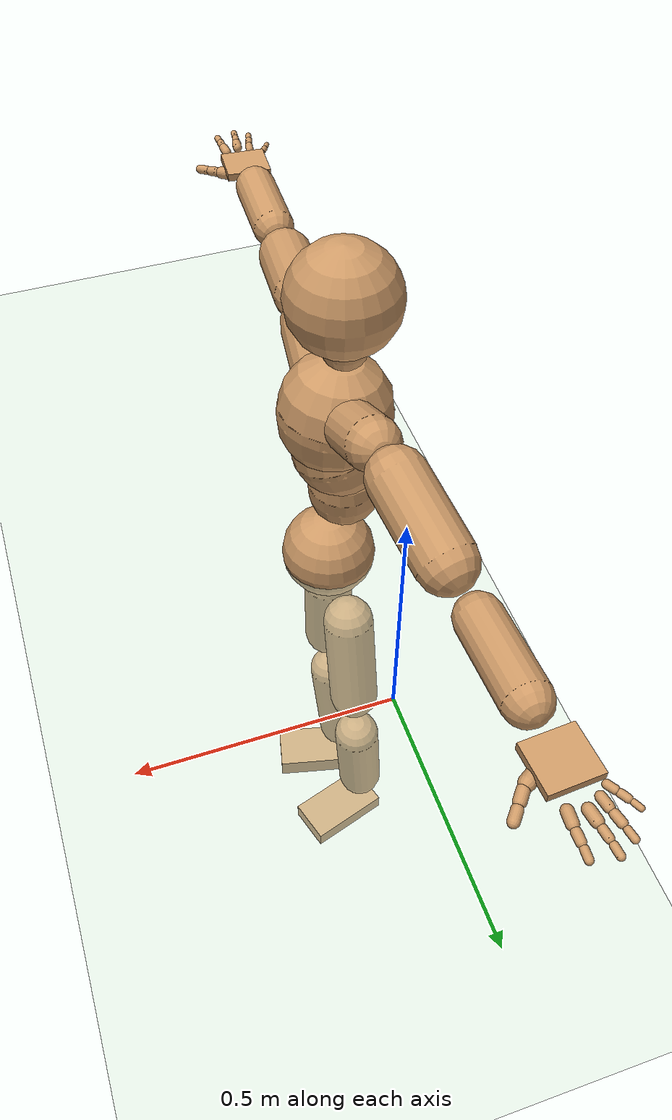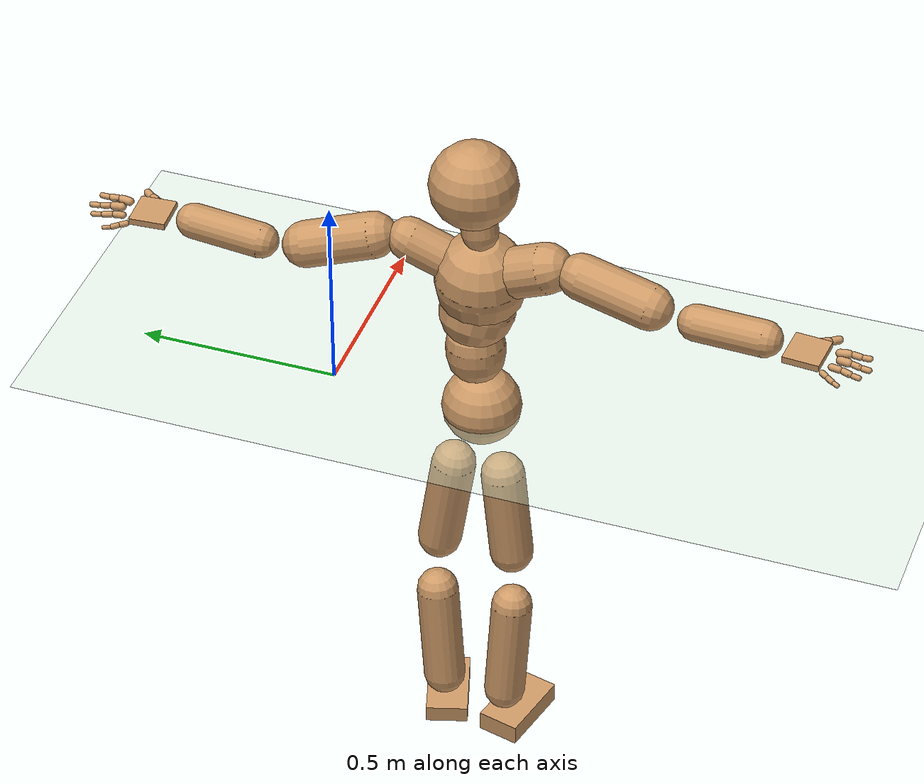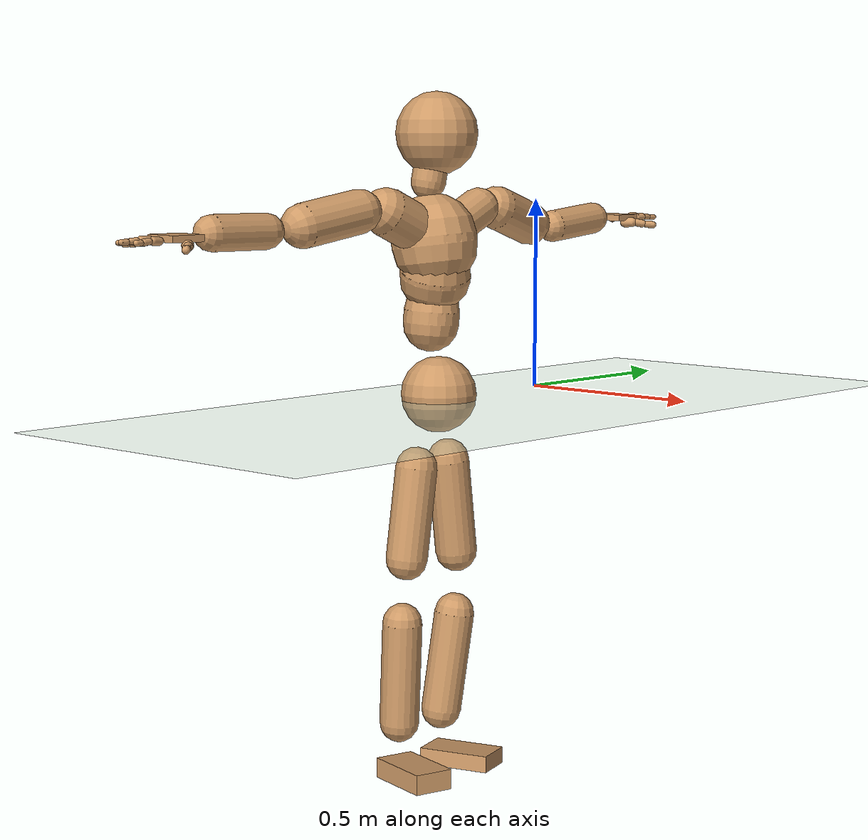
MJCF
<mujoco model="humanoid">
  <compiler coordinate="local" angle="radian"/>
  <default>
    <joint damping="0.0" armature="0.01" stiffness="0.0" limited="true"/>
    <geom conaffinity="1" condim="3" contype="7" margin="0.001" rgba="0.8 0.6 .4 1"/>
  </default>
  <asset>
    <texture type="skybox" builtin="gradient" rgb1=".4 .5 .6" rgb2="0 0 0" width="100" height="100"/>
    <texture builtin="flat" height="1278" mark="cross" markrgb="1 1 1" name="texgeom" random="0.01" rgb1="0.8 0.6 0.4" rgb2="0.8 0.6 0.4" type="cube" width="127"/>
    <texture builtin="checker" height="100" name="texplane" rgb1="0 0 0" rgb2="0.8 0.8 0.8" type="2d" width="100"/>
    <material name="MatPlane" reflectance="0.5" shininess="1" specular="1" texrepeat="60 60" texture="texplane"/>
    <material name="geom" texture="texgeom" texuniform="true"/>
  </asset>
  <worldbody>
    <light cutoff="100" diffuse="1 1 1" dir="-0 0 -1.3" directional="true" exponent="1" pos="0 0 1.3" specular=".1 .1 .1"/>
    <geom conaffinity="1" condim="3" name="floor" pos="0 0 0" rgba="0.8 0.9 0.8 1" size="100 100 .2" type="plane" material="MatPlane"/>
    <body name="Pelvis" pos="0.0011 -0.3809 0.012">
      <freejoint name="Pelvis"/>
      <geom type="sphere" contype="1" conaffinity="1" density="500" size="0.0979" pos="0.0000 0.0000 0.0000" name="Pelvis"/>
      <body name="L_Hip" pos="-0.0233 0.0507 -0.0968">
        <joint name="L_Hip_x" type="hinge" pos="0 0 0" axis="1 0 0" stiffness="800" damping="80" armature="0.02" range="-180.0000 180.0000"/>
        <joint name="L_Hip_y" type="hinge" pos="0 0 0" axis="0 1 0" stiffness="800" damping="80" armature="0.02" range="-180.0000 180.0000"/>
        <joint name="L_Hip_z" type="hinge" pos="0 0 0" axis="0 0 1" stiffness="800" damping="80" armature="0.02" range="-180.0000 180.0000"/>
        <geom type="capsule" contype="1" conaffinity="1" density="500" fromto="-0.0016 0.0121 -0.0824 -0.0063 0.0483 -0.3296" size="0.0547" name="L_Hip"/>
        <body name="L_Knee" pos="-0.0079 0.0604 -0.412">
          <joint name="L_Knee_x" type="hinge" pos="0 0 0" axis="1 0 0" stiffness="800" damping="80" armature="0.02" range="-180.0000 180.0000"/>
          <joint name="L_Knee_y" type="hinge" pos="0 0 0" axis="0 1 0" stiffness="800" damping="80" armature="0.02" range="-180.0000 180.0000"/>
          <joint name="L_Knee_z" type="hinge" pos="0 0 0" axis="0 0 1" stiffness="800" damping="80" armature="0.02" range="-180.0000 180.0000"/>
          <geom type="capsule" contype="1" conaffinity="1" density="500" fromto="-0.0078 -0.0086 -0.0873 -0.0312 -0.0344 -0.3492" size="0.0524" name="L_Knee"/>
          <body name="L_Ankle" pos="-0.039 -0.043 -0.4365">
            <joint name="L_Ankle_x" type="hinge" pos="0 0 0" axis="1 0 0" stiffness="800" damping="80" armature="0.02" range="-180.0000 180.0000"/>
            <joint name="L_Ankle_y" type="hinge" pos="0 0 0" axis="0 1 0" stiffness="800" damping="80" armature="0.02" range="-180.0000 180.0000"/>
            <joint name="L_Ankle_z" type="hinge" pos="0 0 0" axis="0 0 1" stiffness="800" damping="80" armature="0.02" range="-180.0000 180.0000"/>
            <geom type="box" contype="1" conaffinity="1" density="500" pos="0.0700 0.0214 -0.0322" size="0.0959 0.0528 0.0217" quat="0.9890 0.0000 0.0000 0.1482" name="L_Ankle"/>
            <body name="L_Toe" pos="0.1399 0.0429 -0.0644">
              <joint name="L_Toe_x" type="hinge" pos="0 0 0" axis="1 0 0" stiffness="500" damping="50" armature="0.02" range="-180.0000 180.0000"/>
              <joint name="L_Toe_y" type="hinge" pos="0 0 0" axis="0 1 0" stiffness="500" damping="50" armature="0.02" range="-180.0000 180.0000"/>
              <joint name="L_Toe_z" type="hinge" pos="0 0 0" axis="0 0 1" stiffness="500" damping="50" armature="0.02" range="-180.0000 180.0000"/>
              <geom type="box" contype="1" conaffinity="1" density="500" pos="0.0000 0.0000 0.0321" size="0.001 0.0025 0.0011" quat="0.9883 0.0000 0.0000 0.1526" name="L_Toe"/>
            </body>
          </body>
        </body>
      </body>
      <body name="R_Hip" pos="-0.0175 -0.0527 -0.1079">
        <joint name="R_Hip_x" type="hinge" pos="0 0 0" axis="1 0 0" stiffness="800" damping="80" armature="0.02" range="-180.0000 180.0000"/>
        <joint name="R_Hip_y" type="hinge" pos="0 0 0" axis="0 1 0" stiffness="800" damping="80" armature="0.02" range="-180.0000 180.0000"/>
        <joint name="R_Hip_z" type="hinge" pos="0 0 0" axis="0 0 1" stiffness="800" damping="80" armature="0.02" range="-180.0000 180.0000"/>
        <geom type="capsule" contype="1" conaffinity="1" density="500" fromto="-0.0030 -0.0091 -0.0787 -0.0120 -0.0364 -0.3150" size="0.0542" name="R_Hip"/>
        <body name="R_Knee" pos="-0.015 -0.0455 -0.3937">
          <joint name="R_Knee_x" type="hinge" pos="0 0 0" axis="1 0 0" stiffness="800" damping="80" armature="0.02" range="-180.0000 180.0000"/>
          <joint name="R_Knee_y" type="hinge" pos="0 0 0" axis="0 1 0" stiffness="800" damping="80" armature="0.02" range="-180.0000 180.0000"/>
          <joint name="R_Knee_z" type="hinge" pos="0 0 0" axis="0 0 1" stiffness="800" damping="80" armature="0.02" range="-180.0000 180.0000"/>
          <geom type="capsule" contype="1" conaffinity="1" density="500" fromto="-0.0074 0.0035 -0.0903 -0.0295 0.0139 -0.3610" size="0.0516" name="R_Knee"/>
          <body name="R_Ankle" pos="-0.0369 0.0174 -0.4513">
            <joint name="R_Ankle_x" type="hinge" pos="0 0 0" axis="1 0 0" stiffness="800" damping="80" armature="0.02" range="-180.0000 180.0000"/>
            <joint name="R_Ankle_y" type="hinge" pos="0 0 0" axis="0 1 0" stiffness="800" damping="80" armature="0.02" range="-180.0000 180.0000"/>
            <joint name="R_Ankle_z" type="hinge" pos="0 0 0" axis="0 0 1" stiffness="800" damping="80" armature="0.02" range="-180.0000 180.0000"/>
            <geom type="box" contype="1" conaffinity="1" density="500" pos="0.0731 -0.0173 -0.0315" size="0.0959 0.0528 0.0262" quat="0.9932 0.0000 0.0000 -0.1161" name="R_Ankle"/>
            <body name="R_Toe" pos="0.1463 -0.0347 -0.063">
              <joint name="R_Toe_x" type="hinge" pos="0 0 0" axis="1 0 0" stiffness="500" damping="50" armature="0.02" range="-180.0000 180.0000"/>
              <joint name="R_Toe_y" type="hinge" pos="0 0 0" axis="0 1 0" stiffness="500" damping="50" armature="0.02" range="-180.0000 180.0000"/>
              <joint name="R_Toe_z" type="hinge" pos="0 0 0" axis="0 0 1" stiffness="500" damping="50" armature="0.02" range="-180.0000 180.0000"/>
              <geom type="box" contype="1" conaffinity="1" density="500" pos="0.0000 0.0000 0.0269" size="0.001 0.0025 0.0011" quat="0.9941 0.0000 0.0000 -0.1082" name="R_Toe"/>
            </body>
          </body>
        </body>
      </body>
      <body name="Torso" pos="-0.034 -0.0001 0.1146">
        <joint name="Torso_x" type="hinge" pos="0 0 0" axis="1 0 0" stiffness="1000" damping="100" armature="0.02" range="-180.0000 180.0000"/>
        <joint name="Torso_y" type="hinge" pos="0 0 0" axis="0 1 0" stiffness="1000" damping="100" armature="0.02" range="-180.0000 180.0000"/>
        <joint name="Torso_z" type="hinge" pos="0 0 0" axis="0 0 1" stiffness="1000" damping="100" armature="0.02" range="-180.0000 180.0000"/>
        <geom type="capsule" contype="1" conaffinity="1" density="500" fromto="0.0041 0.0060 0.0972 0.0027 0.0040 0.0648" size="0.0719" name="Torso"/>
        <body name="Spine" pos="0.0068 0.0101 0.162">
          <joint name="Spine_x" type="hinge" pos="0 0 0" axis="1 0 0" stiffness="1000" damping="100" armature="0.02" range="-180.0000 180.0000"/>
          <joint name="Spine_y" type="hinge" pos="0 0 0" axis="0 1 0" stiffness="1000" damping="100" armature="0.02" range="-180.0000 180.0000"/>
          <joint name="Spine_z" type="hinge" pos="0 0 0" axis="0 0 1" stiffness="1000" damping="100" armature="0.02" range="-180.0000 180.0000"/>
          <geom type="capsule" contype="1" conaffinity="1" density="500" fromto="0.0121 -0.0063 0.0363 0.0081 -0.0042 0.0242" size="0.0918" name="Spine"/>
          <body name="Chest" pos="0.0202 -0.0105 0.0605">
            <joint name="Chest_x" type="hinge" pos="0 0 0" axis="1 0 0" stiffness="1000" damping="100" armature="0.02" range="-180.0000 180.0000"/>
            <joint name="Chest_y" type="hinge" pos="0 0 0" axis="0 1 0" stiffness="1000" damping="100" armature="0.02" range="-180.0000 180.0000"/>
            <joint name="Chest_z" type="hinge" pos="0 0 0" axis="0 0 1" stiffness="1000" damping="100" armature="0.02" range="-180.0000 180.0000"/>
            <geom type="capsule" contype="1" conaffinity="1" density="500" fromto="-0.0078 -0.0026 0.0666 -0.0052 -0.0017 0.0444" size="0.1103" name="Chest"/>
            <body name="Neck" pos="-0.0267 -0.01 0.1732">
              <joint name="Neck_x" type="hinge" pos="0 0 0" axis="1 0 0" stiffness="500" damping="50" armature="0.02" range="-180.0000 180.0000"/>
              <joint name="Neck_y" type="hinge" pos="0 0 0" axis="0 1 0" stiffness="500" damping="50" armature="0.02" range="-180.0000 180.0000"/>
              <joint name="Neck_z" type="hinge" pos="0 0 0" axis="0 0 1" stiffness="500" damping="50" armature="0.02" range="-180.0000 180.0000"/>
              <geom type="capsule" contype="1" conaffinity="1" density="500" fromto="0.0026 0.0049 0.0307 0.0104 0.0197 0.1229" size="0.0446" name="Neck"/>
              <body name="Head" pos="0.0131 0.0246 0.1536">
                <joint name="Head_x" type="hinge" pos="0 0 0" axis="1 0 0" stiffness="500" damping="50" armature="0.02" range="-180.0000 180.0000"/>
                <joint name="Head_y" type="hinge" pos="0 0 0" axis="0 1 0" stiffness="500" damping="50" armature="0.02" range="-180.0000 180.0000"/>
                <joint name="Head_z" type="hinge" pos="0 0 0" axis="0 0 1" stiffness="500" damping="50" armature="0.02" range="-180.0000 180.0000"/>
                <geom type="sphere" contype="1" conaffinity="1" density="500" size="0.1059" pos="0.0000 0.0000 0.0000" name="Head"/>
              </body>
            </body>
            <body name="L_Thorax" pos="-0.0043 0.0471 0.0795">
              <joint name="L_Thorax_x" type="hinge" pos="0 0 0" axis="1 0 0" stiffness="500" damping="50" armature="0.02" range="-180.0000 180.0000"/>
              <joint name="L_Thorax_y" type="hinge" pos="0 0 0" axis="0 1 0" stiffness="500" damping="50" armature="0.02" range="-180.0000 180.0000"/>
              <joint name="L_Thorax_z" type="hinge" pos="0 0 0" axis="0 0 1" stiffness="500" damping="50" armature="0.02" range="-180.0000 180.0000"/>
              <geom type="capsule" contype="1" conaffinity="1" density="500" fromto="-0.0024 0.0315 0.0136 -0.0095 0.1261 0.0545" size="0.0524" name="L_Thorax"/>
              <body name="L_Shoulder" pos="-0.0119 0.1577 0.0681">
                <joint name="L_Shoulder_x" type="hinge" pos="0 0 0" axis="1 0 0" stiffness="500" damping="50" armature="0.02" range="-180.0000 180.0000"/>
                <joint name="L_Shoulder_y" type="hinge" pos="0 0 0" axis="0 1 0" stiffness="500" damping="50" armature="0.02" range="-180.0000 180.0000"/>
                <joint name="L_Shoulder_z" type="hinge" pos="0 0 0" axis="0 0 1" stiffness="500" damping="50" armature="0.02" range="-180.0000 180.0000"/>
                <geom type="capsule" contype="1" conaffinity="1" density="500" fromto="-0.0089 0.0536 -0.0160 -0.0355 0.2143 -0.0640" size="0.0567" name="L_Shoulder"/>
                <body name="L_Elbow" pos="-0.0444 0.2678 -0.08">
                  <joint name="L_Elbow_x" type="hinge" pos="0 0 0" axis="1 0 0" stiffness="500" damping="50" armature="0.02" range="-720.0000 720.0000"/>
                  <joint name="L_Elbow_y" type="hinge" pos="0 0 0" axis="0 1 0" stiffness="500" damping="50" armature="0.02" range="-720.0000 720.0000"/>
                  <joint name="L_Elbow_z" type="hinge" pos="0 0 0" axis="0 0 1" stiffness="500" damping="50" armature="0.02" range="-720.0000 720.0000"/>
                  <geom type="capsule" contype="1" conaffinity="1" density="500" fromto="-0.0001 0.0567 0.0055 -0.0006 0.2268 0.0219" size="0.0429" name="L_Elbow"/>
                  <body name="L_Wrist" pos="-0.0007 0.2835 0.0274">
                    <joint name="L_Wrist_x" type="hinge" pos="0 0 0" axis="1 0 0" stiffness="300" damping="30" armature="0.02" range="-180.0000 180.0000"/>
                    <joint name="L_Wrist_y" type="hinge" pos="0 0 0" axis="0 1 0" stiffness="300" damping="30" armature="0.02" range="-180.0000 180.0000"/>
                    <joint name="L_Wrist_z" type="hinge" pos="0 0 0" axis="0 0 1" stiffness="300" damping="30" armature="0.02" range="-180.0000 180.0000"/>
                    <geom type="box" contype="1" conaffinity="1" density="500" pos="-0.0031 0.0476 -0.0059" size="0.0445 0.0475 0.0082" quat="0.7294 0.0000 0.0000 -0.6841" name="L_Wrist"/>
                    <body name="L_Index1" pos="0.022 0.1115 -0.0085">
                      <joint name="L_Index1_x" type="hinge" pos="0 0 0" axis="1 0 0" stiffness="100" damping="10" armature="0.02" range="-180.0000 180.0000"/>
                      <joint name="L_Index1_y" type="hinge" pos="0 0 0" axis="0 1 0" stiffness="100" damping="10" armature="0.02" range="-180.0000 180.0000"/>
                      <joint name="L_Index1_z" type="hinge" pos="0 0 0" axis="0 0 1" stiffness="100" damping="10" armature="0.02" range="-180.0000 180.0000"/>
                      <geom type="capsule" contype="1" conaffinity="1" density="500" fromto="0.0007 0.0069 0.0004 0.0028 0.0274 0.0015" size="0.01" name="L_Index1"/>
                      <body name="L_Index2" pos="0.0035 0.0343 0.0019">
                        <joint name="L_Index2_x" type="hinge" pos="0 0 0" axis="1 0 0" stiffness="100" damping="10" armature="0.02" range="-180.0000 180.0000"/>
                        <joint name="L_Index2_y" type="hinge" pos="0 0 0" axis="0 1 0" stiffness="100" damping="10" armature="0.02" range="-180.0000 180.0000"/>
                        <joint name="L_Index2_z" type="hinge" pos="0 0 0" axis="0 0 1" stiffness="100" damping="10" armature="0.02" range="-180.0000 180.0000"/>
                        <geom type="capsule" contype="1" conaffinity="1" density="500" fromto="-0.0001 0.0048 -0.0005 -0.0003 0.0194 -0.0021" size="0.0081" name="L_Index2"/>
                        <body name="L_Index3" pos="-0.0004 0.0242 -0.0026">
                          <joint name="L_Index3_x" type="hinge" pos="0 0 0" axis="1 0 0" stiffness="100" damping="10" armature="0.02" range="-180.0000 180.0000"/>
                          <joint name="L_Index3_y" type="hinge" pos="0 0 0" axis="0 1 0" stiffness="100" damping="10" armature="0.02" range="-180.0000 180.0000"/>
                          <joint name="L_Index3_z" type="hinge" pos="0 0 0" axis="0 0 1" stiffness="100" damping="10" armature="0.02" range="-180.0000 180.0000"/>
                          <geom type="capsule" contype="1" conaffinity="1" density="500" fromto="0.0003 0.0052 -0.0001 0.0013 0.0210 -0.0005" size="0.0069" name="L_Index3"/>
                        </body>
                      </body>
                    </body>
                    <body name="L_Middle1" pos="-0.0042 0.12 -0.0059">
                      <joint name="L_Middle1_x" type="hinge" pos="0 0 0" axis="1 0 0" stiffness="100" damping="10" armature="0.02" range="-180.0000 180.0000"/>
                      <joint name="L_Middle1_y" type="hinge" pos="0 0 0" axis="0 1 0" stiffness="100" damping="10" armature="0.02" range="-180.0000 180.0000"/>
                      <joint name="L_Middle1_z" type="hinge" pos="0 0 0" axis="0 0 1" stiffness="100" damping="10" armature="0.02" range="-180.0000 180.0000"/>
                      <geom type="capsule" contype="1" conaffinity="1" density="500" fromto="-0.0010 0.0066 0.0001 -0.0039 0.0263 0.0003" size="0.0101" name="L_Middle1"/>
                      <body name="L_Middle2" pos="-0.0048 0.0328 0.0004">
                        <joint name="L_Middle2_x" type="hinge" pos="0 0 0" axis="1 0 0" stiffness="100" damping="10" armature="0.02" range="-180.0000 180.0000"/>
                        <joint name="L_Middle2_y" type="hinge" pos="0 0 0" axis="0 1 0" stiffness="100" damping="10" armature="0.02" range="-180.0000 180.0000"/>
                        <joint name="L_Middle2_z" type="hinge" pos="0 0 0" axis="0 0 1" stiffness="100" damping="10" armature="0.02" range="-180.0000 180.0000"/>
                        <geom type="capsule" contype="1" conaffinity="1" density="500" fromto="-0.0009 0.0050 -0.0006 -0.0037 0.0202 -0.0022" size="0.0075" name="L_Middle2"/>
                        <body name="L_Middle3" pos="-0.0047 0.0252 -0.0028">
                          <joint name="L_Middle3_x" type="hinge" pos="0 0 0" axis="1 0 0" stiffness="100" damping="10" armature="0.02" range="-180.0000 180.0000"/>
                          <joint name="L_Middle3_y" type="hinge" pos="0 0 0" axis="0 1 0" stiffness="100" damping="10" armature="0.02" range="-180.0000 180.0000"/>
                          <joint name="L_Middle3_z" type="hinge" pos="0 0 0" axis="0 0 1" stiffness="100" damping="10" armature="0.02" range="-180.0000 180.0000"/>
                          <geom type="capsule" contype="1" conaffinity="1" density="500" fromto="-0.0005 0.0054 -0.0002 -0.0021 0.0218 -0.0006" size="0.0067" name="L_Middle3"/>
                        </body>
                      </body>
                    </body>
                    <body name="L_Pinky1" pos="-0.048 0.093 -0.0152">
                      <joint name="L_Pinky1_x" type="hinge" pos="0 0 0" axis="1 0 0" stiffness="100" damping="10" armature="0.02" range="-180.0000 180.0000"/>
                      <joint name="L_Pinky1_y" type="hinge" pos="0 0 0" axis="0 1 0" stiffness="100" damping="10" armature="0.02" range="-180.0000 180.0000"/>
                      <joint name="L_Pinky1_z" type="hinge" pos="0 0 0" axis="0 0 1" stiffness="100" damping="10" armature="0.02" range="-180.0000 180.0000"/>
                      <geom type="capsule" contype="1" conaffinity="1" density="500" fromto="-0.0025 0.0035 -0.0003 -0.0099 0.0141 -0.0013" size="0.0071" name="L_Pinky1"/>
                      <body name="L_Pinky2" pos="-0.0124 0.0176 -0.0016">
                        <joint name="L_Pinky2_x" type="hinge" pos="0 0 0" axis="1 0 0" stiffness="100" damping="10" armature="0.02" range="-180.0000 180.0000"/>
                        <joint name="L_Pinky2_y" type="hinge" pos="0 0 0" axis="0 1 0" stiffness="100" damping="10" armature="0.02" range="-180.0000 180.0000"/>
                        <joint name="L_Pinky2_z" type="hinge" pos="0 0 0" axis="0 0 1" stiffness="100" damping="10" armature="0.02" range="-180.0000 180.0000"/>
                        <geom type="capsule" contype="1" conaffinity="1" density="500" fromto="-0.0023 0.0034 -0.0004 -0.0093 0.0137 -0.0016" size="0.0068" name="L_Pinky2"/>
                        <body name="L_Pinky3" pos="-0.0116 0.0171 -0.002">
                          <joint name="L_Pinky3_x" type="hinge" pos="0 0 0" axis="1 0 0" stiffness="100" damping="10" armature="0.02" range="-180.0000 180.0000"/>
                          <joint name="L_Pinky3_y" type="hinge" pos="0 0 0" axis="0 1 0" stiffness="100" damping="10" armature="0.02" range="-180.0000 180.0000"/>
                          <joint name="L_Pinky3_z" type="hinge" pos="0 0 0" axis="0 0 1" stiffness="100" damping="10" armature="0.02" range="-180.0000 180.0000"/>
                          <geom type="capsule" contype="1" conaffinity="1" density="500" fromto="-0.0019 0.0038 -0.0000 -0.0077 0.0153 -0.0000" size="0.0052" name="L_Pinky3"/>
                        </body>
                      </body>
                    </body>
                    <body name="L_Ring1" pos="-0.03 0.1073 -0.0092">
                      <joint name="L_Ring1_x" type="hinge" pos="0 0 0" axis="1 0 0" stiffness="100" damping="10" armature="0.02" range="-180.0000 180.0000"/>
                      <joint name="L_Ring1_y" type="hinge" pos="0 0 0" axis="0 1 0" stiffness="100" damping="10" armature="0.02" range="-180.0000 180.0000"/>
                      <joint name="L_Ring1_z" type="hinge" pos="0 0 0" axis="0 0 1" stiffness="100" damping="10" armature="0.02" range="-180.0000 180.0000"/>
                      <geom type="capsule" contype="1" conaffinity="1" density="500" fromto="-0.0011 0.0061 0.0001 -0.0043 0.0244 0.0005" size="0.0085" name="L_Ring1"/>
                      <body name="L_Ring2" pos="-0.0054 0.0305 0.0006">
                        <joint name="L_Ring2_x" type="hinge" pos="0 0 0" axis="1 0 0" stiffness="100" damping="10" armature="0.02" range="-180.0000 180.0000"/>
                        <joint name="L_Ring2_y" type="hinge" pos="0 0 0" axis="0 1 0" stiffness="100" damping="10" armature="0.02" range="-180.0000 180.0000"/>
                        <joint name="L_Ring2_z" type="hinge" pos="0 0 0" axis="0 0 1" stiffness="100" damping="10" armature="0.02" range="-180.0000 180.0000"/>
                        <geom type="capsule" contype="1" conaffinity="1" density="500" fromto="-0.0014 0.0049 -0.0005 -0.0057 0.0197 -0.0020" size="0.008" name="L_Ring2"/>
                        <body name="L_Ring3" pos="-0.0071 0.0247 -0.0025">
                          <joint name="L_Ring3_x" type="hinge" pos="0 0 0" axis="1 0 0" stiffness="100" damping="10" armature="0.02" range="-180.0000 180.0000"/>
                          <joint name="L_Ring3_y" type="hinge" pos="0 0 0" axis="0 1 0" stiffness="100" damping="10" armature="0.02" range="-180.0000 180.0000"/>
                          <joint name="L_Ring3_z" type="hinge" pos="0 0 0" axis="0 0 1" stiffness="100" damping="10" armature="0.02" range="-180.0000 180.0000"/>
                          <geom type="capsule" contype="1" conaffinity="1" density="500" fromto="-0.0010 0.0053 -0.0001 -0.0041 0.0213 -0.0004" size="0.0062" name="L_Ring3"/>
                        </body>
                      </body>
                    </body>
                    <body name="L_Thumb1" pos="0.0296 0.0442 -0.0204">
                      <joint name="L_Thumb1_x" type="hinge" pos="0 0 0" axis="1 0 0" stiffness="100" damping="10" armature="0.02" range="-180.0000 180.0000"/>
                      <joint name="L_Thumb1_y" type="hinge" pos="0 0 0" axis="0 1 0" stiffness="100" damping="10" armature="0.02" range="-180.0000 180.0000"/>
                      <joint name="L_Thumb1_z" type="hinge" pos="0 0 0" axis="0 0 1" stiffness="100" damping="10" armature="0.02" range="-180.0000 180.0000"/>
                      <geom type="capsule" contype="1" conaffinity="1" density="500" fromto="0.0057 0.0036 0.0003 0.0230 0.0142 0.0012" size="0.0132" name="L_Thumb1"/>
                      <body name="L_Thumb2" pos="0.0287 0.0178 0.0015">
                        <joint name="L_Thumb2_x" type="hinge" pos="0 0 0" axis="1 0 0" stiffness="100" damping="10" armature="0.02" range="-180.0000 180.0000"/>
                        <joint name="L_Thumb2_y" type="hinge" pos="0 0 0" axis="0 1 0" stiffness="100" damping="10" armature="0.02" range="-180.0000 180.0000"/>
                        <joint name="L_Thumb2_z" type="hinge" pos="0 0 0" axis="0 0 1" stiffness="100" damping="10" armature="0.02" range="-180.0000 180.0000"/>
                        <geom type="capsule" contype="1" conaffinity="1" density="500" fromto="0.0036 0.0043 -0.0010 0.0144 0.0173 -0.0041" size="0.0104" name="L_Thumb2"/>
                        <body name="L_Thumb3" pos="0.018 0.0216 -0.0051">
                          <joint name="L_Thumb3_x" type="hinge" pos="0 0 0" axis="1 0 0" stiffness="100" damping="10" armature="0.02" range="-180.0000 180.0000"/>
                          <joint name="L_Thumb3_y" type="hinge" pos="0 0 0" axis="0 1 0" stiffness="100" damping="10" armature="0.02" range="-180.0000 180.0000"/>
                          <joint name="L_Thumb3_z" type="hinge" pos="0 0 0" axis="0 0 1" stiffness="100" damping="10" armature="0.02" range="-180.0000 180.0000"/>
                          <geom type="capsule" contype="1" conaffinity="1" density="500" fromto="0.0040 0.0047 -0.0006 0.0160 0.0189 -0.0025" size="0.0096" name="L_Thumb3"/>
                        </body>
                      </body>
                    </body>
                  </body>
                </body>
              </body>
            </body>
            <body name="R_Thorax" pos="-0.0079 -0.0498 0.08">
              <joint name="R_Thorax_x" type="hinge" pos="0 0 0" axis="1 0 0" stiffness="500" damping="50" armature="0.02" range="-180.0000 180.0000"/>
              <joint name="R_Thorax_y" type="hinge" pos="0 0 0" axis="0 1 0" stiffness="500" damping="50" armature="0.02" range="-180.0000 180.0000"/>
              <joint name="R_Thorax_z" type="hinge" pos="0 0 0" axis="0 0 1" stiffness="500" damping="50" armature="0.02" range="-180.0000 180.0000"/>
              <geom type="capsule" contype="1" conaffinity="1" density="500" fromto="-0.0018 -0.0291 0.0132 -0.0073 -0.1164 0.0529" size="0.0616" name="R_Thorax"/>
              <body name="R_Shoulder" pos="-0.0091 -0.1455 0.0662">
                <joint name="R_Shoulder_x" type="hinge" pos="0 0 0" axis="1 0 0" stiffness="500" damping="50" armature="0.02" range="-180.0000 180.0000"/>
                <joint name="R_Shoulder_y" type="hinge" pos="0 0 0" axis="0 1 0" stiffness="500" damping="50" armature="0.02" range="-180.0000 180.0000"/>
                <joint name="R_Shoulder_z" type="hinge" pos="0 0 0" axis="0 0 1" stiffness="500" damping="50" armature="0.02" range="-180.0000 180.0000"/>
                <geom type="capsule" contype="1" conaffinity="1" density="500" fromto="-0.0064 -0.0577 -0.0099 -0.0256 -0.2306 -0.0397" size="0.0556" name="R_Shoulder"/>
                <body name="R_Elbow" pos="-0.032 -0.2883 -0.0496">
                  <joint name="R_Elbow_x" type="hinge" pos="0 0 0" axis="1 0 0" stiffness="500" damping="50" armature="0.02" range="-720.0000 720.0000"/>
                  <joint name="R_Elbow_y" type="hinge" pos="0 0 0" axis="0 1 0" stiffness="500" damping="50" armature="0.02" range="-720.0000 720.0000"/>
                  <joint name="R_Elbow_z" type="hinge" pos="0 0 0" axis="0 0 1" stiffness="500" damping="50" armature="0.02" range="-720.0000 720.0000"/>
                  <geom type="capsule" contype="1" conaffinity="1" density="500" fromto="-0.0023 -0.0549 0.0004 -0.0093 -0.2195 0.0017" size="0.0439" name="R_Elbow"/>
                  <body name="R_Wrist" pos="-0.0116 -0.2744 0.0021">
                    <joint name="R_Wrist_x" type="hinge" pos="0 0 0" axis="1 0 0" stiffness="300" damping="30" armature="0.02" range="-180.0000 180.0000"/>
                    <joint name="R_Wrist_y" type="hinge" pos="0 0 0" axis="0 1 0" stiffness="300" damping="30" armature="0.02" range="-180.0000 180.0000"/>
                    <joint name="R_Wrist_z" type="hinge" pos="0 0 0" axis="0 0 1" stiffness="300" damping="30" armature="0.02" range="-180.0000 180.0000"/>
                    <geom type="box" contype="1" conaffinity="1" density="500" pos="-0.0035 -0.0473 -0.0078" size="0.0445 0.0488 0.0084" quat="0.7327 0.0000 0.0000 0.6806" name="R_Wrist"/>
                    <body name="R_Index1" pos="0.0212 -0.1109 -0.0122">
                      <joint name="R_Index1_x" type="hinge" pos="0 0 0" axis="1 0 0" stiffness="100" damping="10" armature="0.02" range="-180.0000 180.0000"/>
                      <joint name="R_Index1_y" type="hinge" pos="0 0 0" axis="0 1 0" stiffness="100" damping="10" armature="0.02" range="-180.0000 180.0000"/>
                      <joint name="R_Index1_z" type="hinge" pos="0 0 0" axis="0 0 1" stiffness="100" damping="10" armature="0.02" range="-180.0000 180.0000"/>
                      <geom type="capsule" contype="1" conaffinity="1" density="500" fromto="0.0007 -0.0069 0.0004 0.0028 -0.0274 0.0015" size="0.01" name="R_Index1"/>
                      <body name="R_Index2" pos="0.0035 -0.0343 0.0019">
                        <joint name="R_Index2_x" type="hinge" pos="0 0 0" axis="1 0 0" stiffness="100" damping="10" armature="0.02" range="-180.0000 180.0000"/>
                        <joint name="R_Index2_y" type="hinge" pos="0 0 0" axis="0 1 0" stiffness="100" damping="10" armature="0.02" range="-180.0000 180.0000"/>
                        <joint name="R_Index2_z" type="hinge" pos="0 0 0" axis="0 0 1" stiffness="100" damping="10" armature="0.02" range="-180.0000 180.0000"/>
                        <geom type="capsule" contype="1" conaffinity="1" density="500" fromto="-0.0001 -0.0048 -0.0005 -0.0003 -0.0194 -0.0021" size="0.0081" name="R_Index2"/>
                        <body name="R_Index3" pos="-0.0004 -0.0242 -0.0026">
                          <joint name="R_Index3_x" type="hinge" pos="0 0 0" axis="1 0 0" stiffness="100" damping="10" armature="0.02" range="-180.0000 180.0000"/>
                          <joint name="R_Index3_y" type="hinge" pos="0 0 0" axis="0 1 0" stiffness="100" damping="10" armature="0.02" range="-180.0000 180.0000"/>
                          <joint name="R_Index3_z" type="hinge" pos="0 0 0" axis="0 0 1" stiffness="100" damping="10" armature="0.02" range="-180.0000 180.0000"/>
                          <geom type="capsule" contype="1" conaffinity="1" density="500" fromto="0.0003 -0.0044 -0.0001 0.0013 -0.0178 -0.0005" size="0.0072" name="R_Index3"/>
                        </body>
                      </body>
                    </body>
                    <body name="R_Middle1" pos="-0.005 -0.1194 -0.0096">
                      <joint name="R_Middle1_x" type="hinge" pos="0 0 0" axis="1 0 0" stiffness="100" damping="10" armature="0.02" range="-180.0000 180.0000"/>
                      <joint name="R_Middle1_y" type="hinge" pos="0 0 0" axis="0 1 0" stiffness="100" damping="10" armature="0.02" range="-180.0000 180.0000"/>
                      <joint name="R_Middle1_z" type="hinge" pos="0 0 0" axis="0 0 1" stiffness="100" damping="10" armature="0.02" range="-180.0000 180.0000"/>
                      <geom type="capsule" contype="1" conaffinity="1" density="500" fromto="-0.0010 -0.0066 0.0001 -0.0039 -0.0263 0.0003" size="0.0101" name="R_Middle1"/>
                      <body name="R_Middle2" pos="-0.0048 -0.0328 0.0004">
                        <joint name="R_Middle2_x" type="hinge" pos="0 0 0" axis="1 0 0" stiffness="100" damping="10" armature="0.02" range="-180.0000 180.0000"/>
                        <joint name="R_Middle2_y" type="hinge" pos="0 0 0" axis="0 1 0" stiffness="100" damping="10" armature="0.02" range="-180.0000 180.0000"/>
                        <joint name="R_Middle2_z" type="hinge" pos="0 0 0" axis="0 0 1" stiffness="100" damping="10" armature="0.02" range="-180.0000 180.0000"/>
                        <geom type="capsule" contype="1" conaffinity="1" density="500" fromto="-0.0009 -0.0050 -0.0006 -0.0037 -0.0202 -0.0022" size="0.0075" name="R_Middle2"/>
                        <body name="R_Middle3" pos="-0.0047 -0.0252 -0.0028">
                          <joint name="R_Middle3_x" type="hinge" pos="0 0 0" axis="1 0 0" stiffness="100" damping="10" armature="0.02" range="-180.0000 180.0000"/>
                          <joint name="R_Middle3_y" type="hinge" pos="0 0 0" axis="0 1 0" stiffness="100" damping="10" armature="0.02" range="-180.0000 180.0000"/>
                          <joint name="R_Middle3_z" type="hinge" pos="0 0 0" axis="0 0 1" stiffness="100" damping="10" armature="0.02" range="-180.0000 180.0000"/>
                          <geom type="capsule" contype="1" conaffinity="1" density="500" fromto="-0.0005 -0.0046 -0.0002 -0.0021 -0.0186 -0.0006" size="0.007" name="R_Middle3"/>
                        </body>
                      </body>
                    </body>
                    <body name="R_Pinky1" pos="-0.0489 -0.0924 -0.0189">
                      <joint name="R_Pinky1_x" type="hinge" pos="0 0 0" axis="1 0 0" stiffness="100" damping="10" armature="0.02" range="-180.0000 180.0000"/>
                      <joint name="R_Pinky1_y" type="hinge" pos="0 0 0" axis="0 1 0" stiffness="100" damping="10" armature="0.02" range="-180.0000 180.0000"/>
                      <joint name="R_Pinky1_z" type="hinge" pos="0 0 0" axis="0 0 1" stiffness="100" damping="10" armature="0.02" range="-180.0000 180.0000"/>
                      <geom type="capsule" contype="1" conaffinity="1" density="500" fromto="-0.0025 -0.0035 -0.0003 -0.0099 -0.0141 -0.0013" size="0.0071" name="R_Pinky1"/>
                      <body name="R_Pinky2" pos="-0.0124 -0.0176 -0.0016">
                        <joint name="R_Pinky2_x" type="hinge" pos="0 0 0" axis="1 0 0" stiffness="100" damping="10" armature="0.02" range="-180.0000 180.0000"/>
                        <joint name="R_Pinky2_y" type="hinge" pos="0 0 0" axis="0 1 0" stiffness="100" damping="10" armature="0.02" range="-180.0000 180.0000"/>
                        <joint name="R_Pinky2_z" type="hinge" pos="0 0 0" axis="0 0 1" stiffness="100" damping="10" armature="0.02" range="-180.0000 180.0000"/>
                        <geom type="capsule" contype="1" conaffinity="1" density="500" fromto="-0.0023 -0.0034 -0.0004 -0.0093 -0.0137 -0.0016" size="0.0068" name="R_Pinky2"/>
                        <body name="R_Pinky3" pos="-0.0116 -0.0171 -0.002">
                          <joint name="R_Pinky3_x" type="hinge" pos="0 0 0" axis="1 0 0" stiffness="100" damping="10" armature="0.02" range="-180.0000 180.0000"/>
                          <joint name="R_Pinky3_y" type="hinge" pos="0 0 0" axis="0 1 0" stiffness="100" damping="10" armature="0.02" range="-180.0000 180.0000"/>
                          <joint name="R_Pinky3_z" type="hinge" pos="0 0 0" axis="0 0 1" stiffness="100" damping="10" armature="0.02" range="-180.0000 180.0000"/>
                          <geom type="capsule" contype="1" conaffinity="1" density="500" fromto="-0.0019 -0.0030 -0.0000 -0.0077 -0.0121 -0.0000" size="0.0054" name="R_Pinky3"/>
                        </body>
                      </body>
                    </body>
                    <body name="R_Ring1" pos="-0.0309 -0.1067 -0.0129">
                      <joint name="R_Ring1_x" type="hinge" pos="0 0 0" axis="1 0 0" stiffness="100" damping="10" armature="0.02" range="-180.0000 180.0000"/>
                      <joint name="R_Ring1_y" type="hinge" pos="0 0 0" axis="0 1 0" stiffness="100" damping="10" armature="0.02" range="-180.0000 180.0000"/>
                      <joint name="R_Ring1_z" type="hinge" pos="0 0 0" axis="0 0 1" stiffness="100" damping="10" armature="0.02" range="-180.0000 180.0000"/>
                      <geom type="capsule" contype="1" conaffinity="1" density="500" fromto="-0.0011 -0.0061 0.0001 -0.0043 -0.0244 0.0005" size="0.0085" name="R_Ring1"/>
                      <body name="R_Ring2" pos="-0.0054 -0.0305 0.0006">
                        <joint name="R_Ring2_x" type="hinge" pos="0 0 0" axis="1 0 0" stiffness="100" damping="10" armature="0.02" range="-180.0000 180.0000"/>
                        <joint name="R_Ring2_y" type="hinge" pos="0 0 0" axis="0 1 0" stiffness="100" damping="10" armature="0.02" range="-180.0000 180.0000"/>
                        <joint name="R_Ring2_z" type="hinge" pos="0 0 0" axis="0 0 1" stiffness="100" damping="10" armature="0.02" range="-180.0000 180.0000"/>
                        <geom type="capsule" contype="1" conaffinity="1" density="500" fromto="-0.0014 -0.0049 -0.0005 -0.0057 -0.0197 -0.0020" size="0.008" name="R_Ring2"/>
                        <body name="R_Ring3" pos="-0.0071 -0.0247 -0.0025">
                          <joint name="R_Ring3_x" type="hinge" pos="0 0 0" axis="1 0 0" stiffness="100" damping="10" armature="0.02" range="-180.0000 180.0000"/>
                          <joint name="R_Ring3_y" type="hinge" pos="0 0 0" axis="0 1 0" stiffness="100" damping="10" armature="0.02" range="-180.0000 180.0000"/>
                          <joint name="R_Ring3_z" type="hinge" pos="0 0 0" axis="0 0 1" stiffness="100" damping="10" armature="0.02" range="-180.0000 180.0000"/>
                          <geom type="capsule" contype="1" conaffinity="1" density="500" fromto="-0.0010 -0.0045 -0.0001 -0.0041 -0.0181 -0.0004" size="0.0065" name="R_Ring3"/>
                        </body>
                      </body>
                    </body>
                    <body name="R_Thumb1" pos="0.0287 -0.0435 -0.0241">
                      <joint name="R_Thumb1_x" type="hinge" pos="0 0 0" axis="1 0 0" stiffness="100" damping="10" armature="0.02" range="-180.0000 180.0000"/>
                      <joint name="R_Thumb1_y" type="hinge" pos="0 0 0" axis="0 1 0" stiffness="100" damping="10" armature="0.02" range="-180.0000 180.0000"/>
                      <joint name="R_Thumb1_z" type="hinge" pos="0 0 0" axis="0 0 1" stiffness="100" damping="10" armature="0.02" range="-180.0000 180.0000"/>
                      <geom type="capsule" contype="1" conaffinity="1" density="500" fromto="0.0057 -0.0036 0.0003 0.0230 -0.0142 0.0012" size="0.0132" name="R_Thumb1"/>
                      <body name="R_Thumb2" pos="0.0287 -0.0178 0.0015">
                        <joint name="R_Thumb2_x" type="hinge" pos="0 0 0" axis="1 0 0" stiffness="100" damping="10" armature="0.02" range="-180.0000 180.0000"/>
                        <joint name="R_Thumb2_y" type="hinge" pos="0 0 0" axis="0 1 0" stiffness="100" damping="10" armature="0.02" range="-180.0000 180.0000"/>
                        <joint name="R_Thumb2_z" type="hinge" pos="0 0 0" axis="0 0 1" stiffness="100" damping="10" armature="0.02" range="-180.0000 180.0000"/>
                        <geom type="capsule" contype="1" conaffinity="1" density="500" fromto="0.0036 -0.0043 -0.0010 0.0144 -0.0173 -0.0041" size="0.0104" name="R_Thumb2"/>
                        <body name="R_Thumb3" pos="0.018 -0.0216 -0.0051">
                          <joint name="R_Thumb3_x" type="hinge" pos="0 0 0" axis="1 0 0" stiffness="100" damping="10" armature="0.02" range="-180.0000 180.0000"/>
                          <joint name="R_Thumb3_y" type="hinge" pos="0 0 0" axis="0 1 0" stiffness="100" damping="10" armature="0.02" range="-180.0000 180.0000"/>
                          <joint name="R_Thumb3_z" type="hinge" pos="0 0 0" axis="0 0 1" stiffness="100" damping="10" armature="0.02" range="-180.0000 180.0000"/>
                          <geom type="capsule" contype="1" conaffinity="1" density="500" fromto="0.0040 -0.0039 -0.0006 0.0160 -0.0157 -0.0025" size="0.0098" name="R_Thumb3"/>
                        </body>
                      </body>
                    </body>
                  </body>
                </body>
              </body>
            </body>
          </body>
        </body>
      </body>
    </body>
  </worldbody>
  <actuator>
    <motor name="L_Hip_x" joint="L_Hip_x" gear="500"/>
    <motor name="L_Hip_y" joint="L_Hip_y" gear="500"/>
    <motor name="L_Hip_z" joint="L_Hip_z" gear="500"/>
    <motor name="L_Knee_x" joint="L_Knee_x" gear="500"/>
    <motor name="L_Knee_y" joint="L_Knee_y" gear="500"/>
    <motor name="L_Knee_z" joint="L_Knee_z" gear="500"/>
    <motor name="L_Ankle_x" joint="L_Ankle_x" gear="500"/>
    <motor name="L_Ankle_y" joint="L_Ankle_y" gear="500"/>
    <motor name="L_Ankle_z" joint="L_Ankle_z" gear="500"/>
    <motor name="L_Toe_x" joint="L_Toe_x" gear="500"/>
    <motor name="L_Toe_y" joint="L_Toe_y" gear="500"/>
    <motor name="L_Toe_z" joint="L_Toe_z" gear="500"/>
    <motor name="R_Hip_x" joint="R_Hip_x" gear="500"/>
    <motor name="R_Hip_y" joint="R_Hip_y" gear="500"/>
    <motor name="R_Hip_z" joint="R_Hip_z" gear="500"/>
    <motor name="R_Knee_x" joint="R_Knee_x" gear="500"/>
    <motor name="R_Knee_y" joint="R_Knee_y" gear="500"/>
    <motor name="R_Knee_z" joint="R_Knee_z" gear="500"/>
    <motor name="R_Ankle_x" joint="R_Ankle_x" gear="500"/>
    <motor name="R_Ankle_y" joint="R_Ankle_y" gear="500"/>
    <motor name="R_Ankle_z" joint="R_Ankle_z" gear="500"/>
    <motor name="R_Toe_x" joint="R_Toe_x" gear="500"/>
    <motor name="R_Toe_y" joint="R_Toe_y" gear="500"/>
    <motor name="R_Toe_z" joint="R_Toe_z" gear="500"/>
    <motor name="Torso_x" joint="Torso_x" gear="500"/>
    <motor name="Torso_y" joint="Torso_y" gear="500"/>
    <motor name="Torso_z" joint="Torso_z" gear="500"/>
    <motor name="Spine_x" joint="Spine_x" gear="500"/>
    <motor name="Spine_y" joint="Spine_y" gear="500"/>
    <motor name="Spine_z" joint="Spine_z" gear="500"/>
    <motor name="Chest_x" joint="Chest_x" gear="500"/>
    <motor name="Chest_y" joint="Chest_y" gear="500"/>
    <motor name="Chest_z" joint="Chest_z" gear="500"/>
    <motor name="Neck_x" joint="Neck_x" gear="500"/>
    <motor name="Neck_y" joint="Neck_y" gear="500"/>
    <motor name="Neck_z" joint="Neck_z" gear="500"/>
    <motor name="Head_x" joint="Head_x" gear="500"/>
    <motor name="Head_y" joint="Head_y" gear="500"/>
    <motor name="Head_z" joint="Head_z" gear="500"/>
    <motor name="L_Thorax_x" joint="L_Thorax_x" gear="500"/>
    <motor name="L_Thorax_y" joint="L_Thorax_y" gear="500"/>
    <motor name="L_Thorax_z" joint="L_Thorax_z" gear="500"/>
    <motor name="L_Shoulder_x" joint="L_Shoulder_x" gear="500"/>
    <motor name="L_Shoulder_y" joint="L_Shoulder_y" gear="500"/>
    <motor name="L_Shoulder_z" joint="L_Shoulder_z" gear="500"/>
    <motor name="L_Elbow_x" joint="L_Elbow_x" gear="500"/>
    <motor name="L_Elbow_y" joint="L_Elbow_y" gear="500"/>
    <motor name="L_Elbow_z" joint="L_Elbow_z" gear="500"/>
    <motor name="L_Wrist_x" joint="L_Wrist_x" gear="500"/>
    <motor name="L_Wrist_y" joint="L_Wrist_y" gear="500"/>
    <motor name="L_Wrist_z" joint="L_Wrist_z" gear="500"/>
    <motor name="L_Index1_x" joint="L_Index1_x" gear="500"/>
    <motor name="L_Index1_y" joint="L_Index1_y" gear="500"/>
    <motor name="L_Index1_z" joint="L_Index1_z" gear="500"/>
    <motor name="L_Index2_x" joint="L_Index2_x" gear="500"/>
    <motor name="L_Index2_y" joint="L_Index2_y" gear="500"/>
    <motor name="L_Index2_z" joint="L_Index2_z" gear="500"/>
    <motor name="L_Index3_x" joint="L_Index3_x" gear="500"/>
    <motor name="L_Index3_y" joint="L_Index3_y" gear="500"/>
    <motor name="L_Index3_z" joint="L_Index3_z" gear="500"/>
    <motor name="L_Middle1_x" joint="L_Middle1_x" gear="500"/>
    <motor name="L_Middle1_y" joint="L_Middle1_y" gear="500"/>
    <motor name="L_Middle1_z" joint="L_Middle1_z" gear="500"/>
    <motor name="L_Middle2_x" joint="L_Middle2_x" gear="500"/>
    <motor name="L_Middle2_y" joint="L_Middle2_y" gear="500"/>
    <motor name="L_Middle2_z" joint="L_Middle2_z" gear="500"/>
    <motor name="L_Middle3_x" joint="L_Middle3_x" gear="500"/>
    <motor name="L_Middle3_y" joint="L_Middle3_y" gear="500"/>
    <motor name="L_Middle3_z" joint="L_Middle3_z" gear="500"/>
    <motor name="L_Pinky1_x" joint="L_Pinky1_x" gear="500"/>
    <motor name="L_Pinky1_y" joint="L_Pinky1_y" gear="500"/>
    <motor name="L_Pinky1_z" joint="L_Pinky1_z" gear="500"/>
    <motor name="L_Pinky2_x" joint="L_Pinky2_x" gear="500"/>
    <motor name="L_Pinky2_y" joint="L_Pinky2_y" gear="500"/>
    <motor name="L_Pinky2_z" joint="L_Pinky2_z" gear="500"/>
    <motor name="L_Pinky3_x" joint="L_Pinky3_x" gear="500"/>
    <motor name="L_Pinky3_y" joint="L_Pinky3_y" gear="500"/>
    <motor name="L_Pinky3_z" joint="L_Pinky3_z" gear="500"/>
    <motor name="L_Ring1_x" joint="L_Ring1_x" gear="500"/>
    <motor name="L_Ring1_y" joint="L_Ring1_y" gear="500"/>
    <motor name="L_Ring1_z" joint="L_Ring1_z" gear="500"/>
    <motor name="L_Ring2_x" joint="L_Ring2_x" gear="500"/>
    <motor name="L_Ring2_y" joint="L_Ring2_y" gear="500"/>
    <motor name="L_Ring2_z" joint="L_Ring2_z" gear="500"/>
    <motor name="L_Ring3_x" joint="L_Ring3_x" gear="500"/>
    <motor name="L_Ring3_y" joint="L_Ring3_y" gear="500"/>
    <motor name="L_Ring3_z" joint="L_Ring3_z" gear="500"/>
    <motor name="L_Thumb1_x" joint="L_Thumb1_x" gear="500"/>
    <motor name="L_Thumb1_y" joint="L_Thumb1_y" gear="500"/>
    <motor name="L_Thumb1_z" joint="L_Thumb1_z" gear="500"/>
    <motor name="L_Thumb2_x" joint="L_Thumb2_x" gear="500"/>
    <motor name="L_Thumb2_y" joint="L_Thumb2_y" gear="500"/>
    <motor name="L_Thumb2_z" joint="L_Thumb2_z" gear="500"/>
    <motor name="L_Thumb3_x" joint="L_Thumb3_x" gear="500"/>
    <motor name="L_Thumb3_y" joint="L_Thumb3_y" gear="500"/>
    <motor name="L_Thumb3_z" joint="L_Thumb3_z" gear="500"/>
    <motor name="R_Thorax_x" joint="R_Thorax_x" gear="500"/>
    <motor name="R_Thorax_y" joint="R_Thorax_y" gear="500"/>
    <motor name="R_Thorax_z" joint="R_Thorax_z" gear="500"/>
    <motor name="R_Shoulder_x" joint="R_Shoulder_x" gear="500"/>
    <motor name="R_Shoulder_y" joint="R_Shoulder_y" gear="500"/>
    <motor name="R_Shoulder_z" joint="R_Shoulder_z" gear="500"/>
    <motor name="R_Elbow_x" joint="R_Elbow_x" gear="500"/>
    <motor name="R_Elbow_y" joint="R_Elbow_y" gear="500"/>
    <motor name="R_Elbow_z" joint="R_Elbow_z" gear="500"/>
    <motor name="R_Wrist_x" joint="R_Wrist_x" gear="500"/>
    <motor name="R_Wrist_y" joint="R_Wrist_y" gear="500"/>
    <motor name="R_Wrist_z" joint="R_Wrist_z" gear="500"/>
    <motor name="R_Index1_x" joint="R_Index1_x" gear="500"/>
    <motor name="R_Index1_y" joint="R_Index1_y" gear="500"/>
    <motor name="R_Index1_z" joint="R_Index1_z" gear="500"/>
    <motor name="R_Index2_x" joint="R_Index2_x" gear="500"/>
    <motor name="R_Index2_y" joint="R_Index2_y" gear="500"/>
    <motor name="R_Index2_z" joint="R_Index2_z" gear="500"/>
    <motor name="R_Index3_x" joint="R_Index3_x" gear="500"/>
    <motor name="R_Index3_y" joint="R_Index3_y" gear="500"/>
    <motor name="R_Index3_z" joint="R_Index3_z" gear="500"/>
    <motor name="R_Middle1_x" joint="R_Middle1_x" gear="500"/>
    <motor name="R_Middle1_y" joint="R_Middle1_y" gear="500"/>
    <motor name="R_Middle1_z" joint="R_Middle1_z" gear="500"/>
    <motor name="R_Middle2_x" joint="R_Middle2_x" gear="500"/>
    <motor name="R_Middle2_y" joint="R_Middle2_y" gear="500"/>
    <motor name="R_Middle2_z" joint="R_Middle2_z" gear="500"/>
    <motor name="R_Middle3_x" joint="R_Middle3_x" gear="500"/>
    <motor name="R_Middle3_y" joint="R_Middle3_y" gear="500"/>
    <motor name="R_Middle3_z" joint="R_Middle3_z" gear="500"/>
    <motor name="R_Pinky1_x" joint="R_Pinky1_x" gear="500"/>
    <motor name="R_Pinky1_y" joint="R_Pinky1_y" gear="500"/>
    <motor name="R_Pinky1_z" joint="R_Pinky1_z" gear="500"/>
    <motor name="R_Pinky2_x" joint="R_Pinky2_x" gear="500"/>
    <motor name="R_Pinky2_y" joint="R_Pinky2_y" gear="500"/>
    <motor name="R_Pinky2_z" joint="R_Pinky2_z" gear="500"/>
    <motor name="R_Pinky3_x" joint="R_Pinky3_x" gear="500"/>
    <motor name="R_Pinky3_y" joint="R_Pinky3_y" gear="500"/>
    <motor name="R_Pinky3_z" joint="R_Pinky3_z" gear="500"/>
    <motor name="R_Ring1_x" joint="R_Ring1_x" gear="500"/>
    <motor name="R_Ring1_y" joint="R_Ring1_y" gear="500"/>
    <motor name="R_Ring1_z" joint="R_Ring1_z" gear="500"/>
    <motor name="R_Ring2_x" joint="R_Ring2_x" gear="500"/>
    <motor name="R_Ring2_y" joint="R_Ring2_y" gear="500"/>
    <motor name="R_Ring2_z" joint="R_Ring2_z" gear="500"/>
    <motor name="R_Ring3_x" joint="R_Ring3_x" gear="500"/>
    <motor name="R_Ring3_y" joint="R_Ring3_y" gear="500"/>
    <motor name="R_Ring3_z" joint="R_Ring3_z" gear="500"/>
    <motor name="R_Thumb1_x" joint="R_Thumb1_x" gear="500"/>
    <motor name="R_Thumb1_y" joint="R_Thumb1_y" gear="500"/>
    <motor name="R_Thumb1_z" joint="R_Thumb1_z" gear="500"/>
    <motor name="R_Thumb2_x" joint="R_Thumb2_x" gear="500"/>
    <motor name="R_Thumb2_y" joint="R_Thumb2_y" gear="500"/>
    <motor name="R_Thumb2_z" joint="R_Thumb2_z" gear="500"/>
    <motor name="R_Thumb3_x" joint="R_Thumb3_x" gear="500"/>
    <motor name="R_Thumb3_y" joint="R_Thumb3_y" gear="500"/>
    <motor name="R_Thumb3_z" joint="R_Thumb3_z" gear="500"/>
  </actuator>
  <contact>
    <exclude body1="Torso" body2="Chest"/>
    <exclude body1="Head" body2="Chest"/>
    <exclude body1="R_Knee" body2="R_Toe"/>
    <exclude body1="R_Knee" body2="L_Ankle"/>
    <exclude body1="R_Knee" body2="L_Toe"/>
    <exclude body1="L_Knee" body2="L_Toe"/>
    <exclude body1="L_Knee" body2="R_Ankle"/>
    <exclude body1="L_Knee" body2="R_Toe"/>
    <exclude body1="L_Shoulder" body2="Chest"/>
    <exclude body1="R_Shoulder" body2="Chest"/>
  </contact>
  <sensor/>
  <size njmax="700" nconmax="700"/>
</mujoco>
